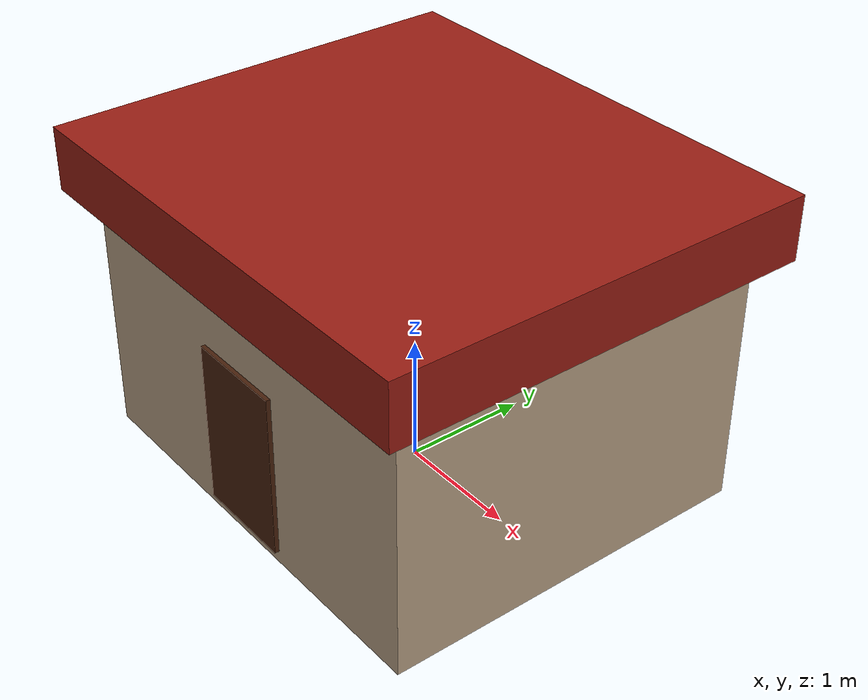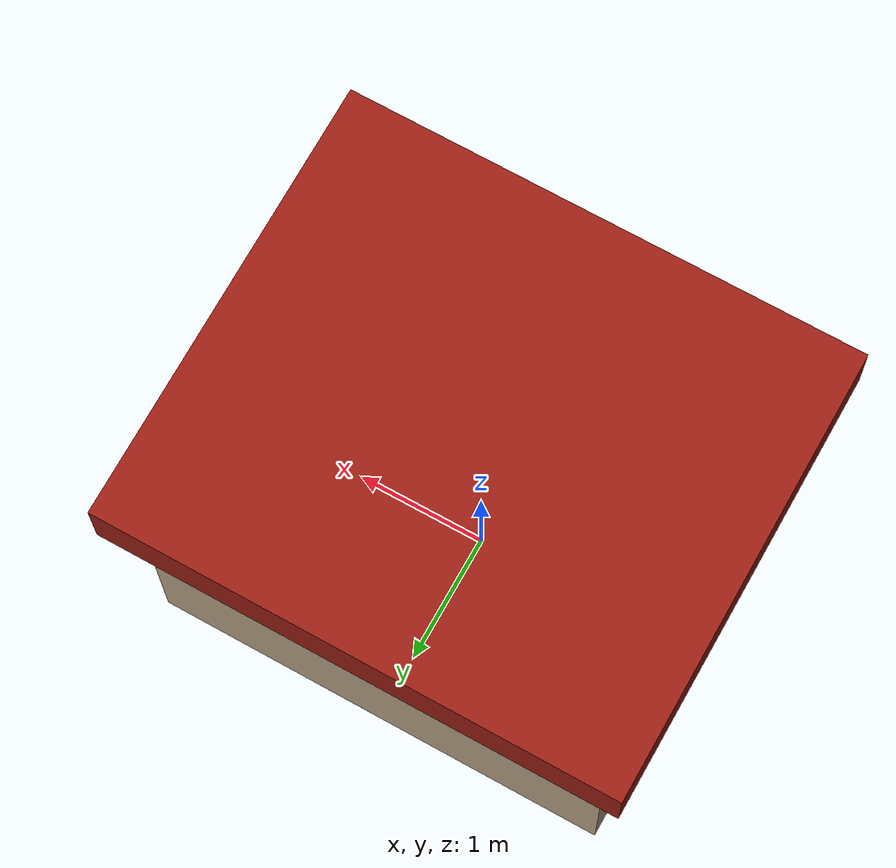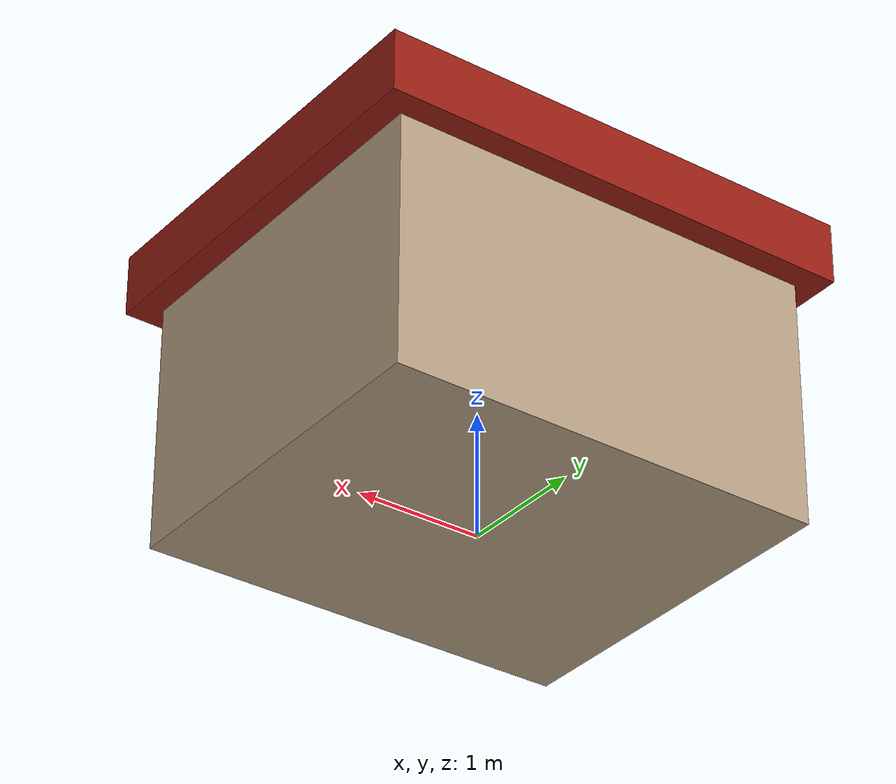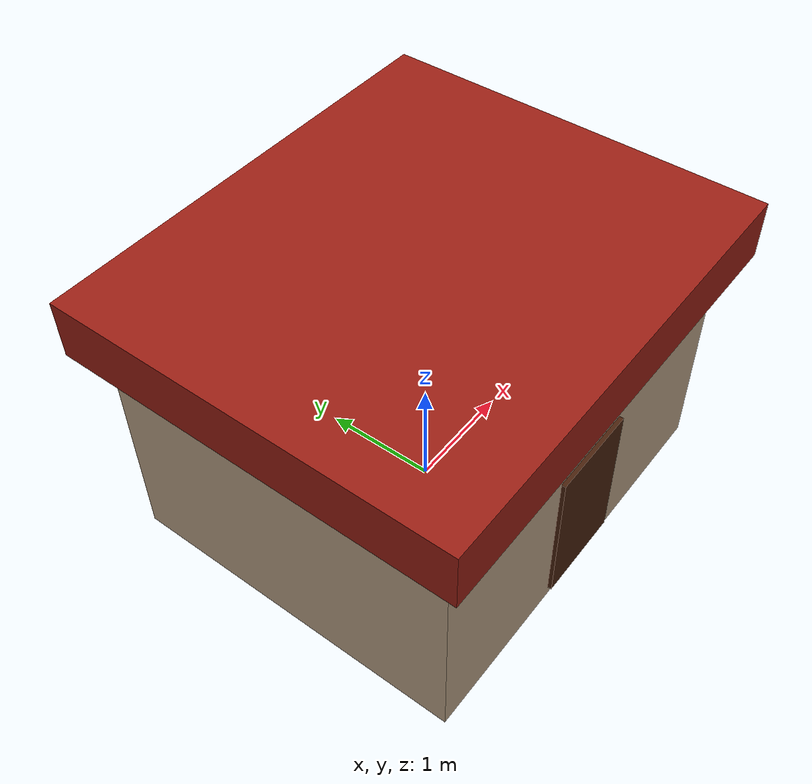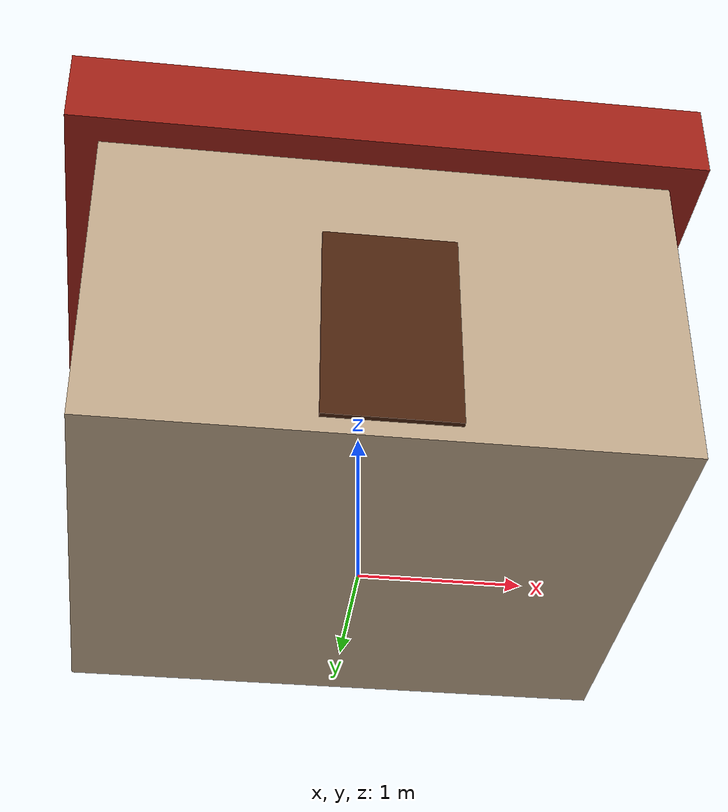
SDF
<?xml version="1.0" ?>
<sdf version="1.5">
    <model name="simple_house">
        <static>true</static>
        <link name="house">
            <pose>0 0 1.0 0 0 0</pose>
            <collision name="walls_collision">
                <geometry>
                    <box>
                        <size>3.5 3.0 2.0</size>
                    </box>
                </geometry>
            </collision>
            <visual name="walls_visual">
                <geometry>
                    <box>
                        <size>3.5 3.0 2.0</size>
                    </box>
                </geometry>
                <material>
                    <ambient>0.72 0.63 0.52 1</ambient>
                    <diffuse>0.72 0.63 0.52 1</diffuse>
                </material>
            </visual>
        </link>
        <link name="roof">
            <pose>0 0 2.25 0 0 0</pose>
            <visual name="roof_visual">
                <geometry>
                    <box>
                        <size>3.9 3.4 0.5</size>
                    </box>
                </geometry>
                <material>
                    <ambient>0.45 0.08 0.06 1</ambient>
                    <diffuse>0.6 0.12 0.08 1</diffuse>
                </material>
            </visual>
        </link>
        <link name="door">
            <pose>0 -1.51 0.75 0 0 0</pose>
            <visual name="door_visual">
                <geometry>
                    <box>
                        <size>0.8 0.05 1.3</size>
                    </box>
                </geometry>
                <material>
                    <ambient>0.2 0.09 0.03 1</ambient>
                    <diffuse>0.28 0.13 0.05 1</diffuse>
                </material>
            </visual>
        </link>
    </model>
</sdf>
